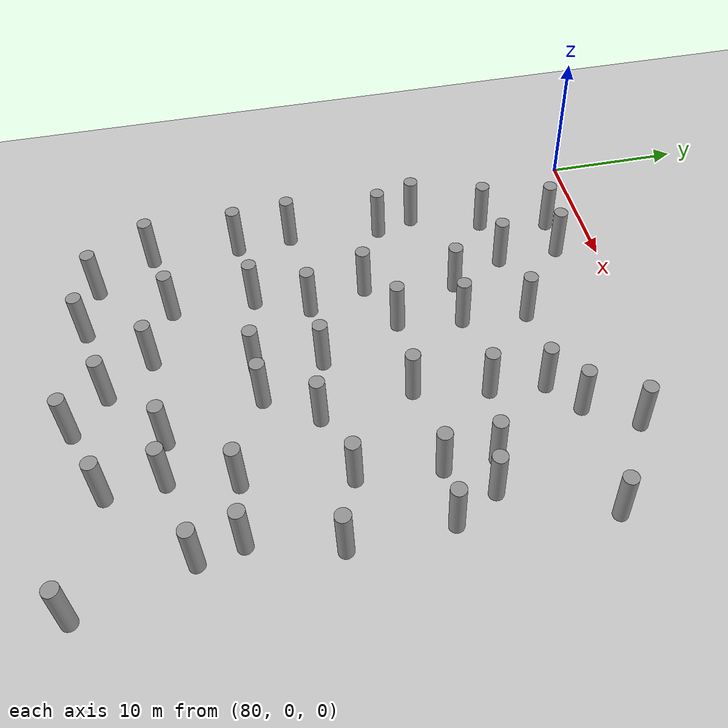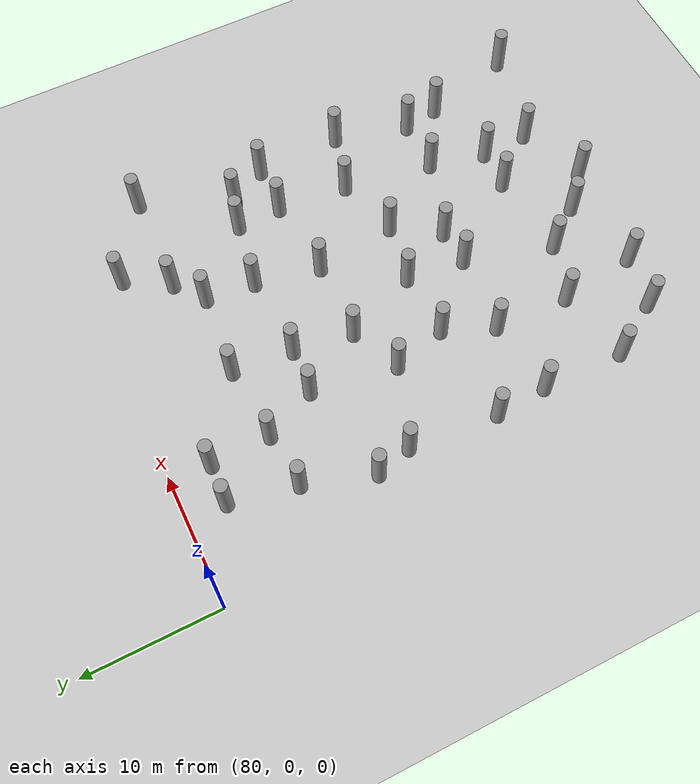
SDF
<sdf version="1.5">
 <world name="circle">
  <model name="ground">
   <static>1</static>
   <link name="link">
    <collision name="collision">
     <geometry><plane><normal>0 0 1</normal><size>100 100</size></plane></geometry>
     <surface><friction><ode><mu>100</mu><mu2>50</mu2></ode></friction></surface>
    </collision>
    <visual name="visual">
     <cast_shadows>0</cast_shadows>
     <geometry><plane><normal>0 0 1</normal><size>100 100</size></plane></geometry>
     <material>
      <script><uri>file://media/materials/scripts/gazebo.material</uri><name>Gazebo/Grey</name></script>
     </material>
    </visual>
    <velocity_decay><linear>0</linear><angular>0</angular></velocity_decay>
   </link>
  </model>
  <model name="unit_cylinder_225">
   <pose>86.4956951205 -36.5003916721 2 3e-06 4e-06 -0</pose>
   <static>1</static>
   <self_collide>1</self_collide>
   <link name="link">
    <inertial>
     <mass>1</mass>
     <inertia><ixx>0.145833</ixx><ixy>0</ixy><ixz>0</ixz><iyy>0.145833</iyy><iyz>0</iyz><izz>0.125</izz></inertia>
    </inertial>
    <collision name="collision">
     <geometry><cylinder><radius>0.5</radius><length>4</length></cylinder></geometry>
    </collision>
    <visual name="visual">
     <geometry><cylinder><radius>0.5</radius><length>4</length></cylinder></geometry>
     <material>
      <script><name>Gazebo/Grey</name><uri>file://media/materials/scripts/gazebo.material</uri></script>
     </material>
    </visual>
    <collision name="cyl_collision">
     <geometry><cylinder><radius>0.5</radius><length>4</length></cylinder></geometry>
    </collision>
    <sensor name="my_contact" type="contact">
     <contact><collision>cyl_collision</collision></contact>
     <update_rate>5</update_rate>
    </sensor>
   </link>
  </model>
  <model name="unit_cylinder_226">
   <pose>84.0074222002 -32.5677359966 2 3e-06 4e-06 -0</pose>
   <static>1</static>
   <self_collide>1</self_collide>
   <link name="link">
    <inertial>
     <mass>1</mass>
     <inertia><ixx>0.145833</ixx><ixy>0</ixy><ixz>0</ixz><iyy>0.145833</iyy><iyz>0</iyz><izz>0.125</izz></inertia>
    </inertial>
    <collision name="collision">
     <geometry><cylinder><radius>0.5</radius><length>4</length></cylinder></geometry>
    </collision>
    <visual name="visual">
     <geometry><cylinder><radius>0.5</radius><length>4</length></cylinder></geometry>
     <material>
      <script><name>Gazebo/Grey</name><uri>file://media/materials/scripts/gazebo.material</uri></script>
     </material>
    </visual>
    <collision name="cyl_collision">
     <geometry><cylinder><radius>0.5</radius><length>4</length></cylinder></geometry>
    </collision>
    <sensor name="my_contact" type="contact">
     <contact><collision>cyl_collision</collision></contact>
     <update_rate>5</update_rate>
    </sensor>
   </link>
  </model>
  <model name="unit_cylinder_227">
   <pose>84.0986050328 -26.2954249527 2 3e-06 4e-06 -0</pose>
   <static>1</static>
   <self_collide>1</self_collide>
   <link name="link">
    <inertial>
     <mass>1</mass>
     <inertia><ixx>0.145833</ixx><ixy>0</ixy><ixz>0</ixz><iyy>0.145833</iyy><iyz>0</iyz><izz>0.125</izz></inertia>
    </inertial>
    <collision name="collision">
     <geometry><cylinder><radius>0.5</radius><length>4</length></cylinder></geometry>
    </collision>
    <visual name="visual">
     <geometry><cylinder><radius>0.5</radius><length>4</length></cylinder></geometry>
     <material>
      <script><name>Gazebo/Grey</name><uri>file://media/materials/scripts/gazebo.material</uri></script>
     </material>
    </visual>
    <collision name="cyl_collision">
     <geometry><cylinder><radius>0.5</radius><length>4</length></cylinder></geometry>
    </collision>
    <sensor name="my_contact" type="contact">
     <contact><collision>cyl_collision</collision></contact>
     <update_rate>5</update_rate>
    </sensor>
   </link>
  </model>
  <model name="unit_cylinder_228">
   <pose>83.7937717257 -22.3384282768 2 3e-06 4e-06 -0</pose>
   <static>1</static>
   <self_collide>1</self_collide>
   <link name="link">
    <inertial>
     <mass>1</mass>
     <inertia><ixx>0.145833</ixx><ixy>0</ixy><ixz>0</ixz><iyy>0.145833</iyy><iyz>0</iyz><izz>0.125</izz></inertia>
    </inertial>
    <collision name="collision">
     <geometry><cylinder><radius>0.5</radius><length>4</length></cylinder></geometry>
    </collision>
    <visual name="visual">
     <geometry><cylinder><radius>0.5</radius><length>4</length></cylinder></geometry>
     <material>
      <script><name>Gazebo/Grey</name><uri>file://media/materials/scripts/gazebo.material</uri></script>
     </material>
    </visual>
    <collision name="cyl_collision">
     <geometry><cylinder><radius>0.5</radius><length>4</length></cylinder></geometry>
    </collision>
    <sensor name="my_contact" type="contact">
     <contact><collision>cyl_collision</collision></contact>
     <update_rate>5</update_rate>
    </sensor>
   </link>
  </model>
  <model name="unit_cylinder_229">
   <pose>84.342156499 -15.6404405213 2 3e-06 4e-06 -0</pose>
   <static>1</static>
   <self_collide>1</self_collide>
   <link name="link">
    <inertial>
     <mass>1</mass>
     <inertia><ixx>0.145833</ixx><ixy>0</ixy><ixz>0</ixz><iyy>0.145833</iyy><iyz>0</iyz><izz>0.125</izz></inertia>
    </inertial>
    <collision name="collision">
     <geometry><cylinder><radius>0.5</radius><length>4</length></cylinder></geometry>
    </collision>
    <visual name="visual">
     <geometry><cylinder><radius>0.5</radius><length>4</length></cylinder></geometry>
     <material>
      <script><name>Gazebo/Grey</name><uri>file://media/materials/scripts/gazebo.material</uri></script>
     </material>
    </visual>
    <collision name="cyl_collision">
     <geometry><cylinder><radius>0.5</radius><length>4</length></cylinder></geometry>
    </collision>
    <sensor name="my_contact" type="contact">
     <contact><collision>cyl_collision</collision></contact>
     <update_rate>5</update_rate>
    </sensor>
   </link>
  </model>
  <model name="unit_cylinder_230">
   <pose>83.5856992565 -12.9443503097 2 3e-06 4e-06 -0</pose>
   <static>1</static>
   <self_collide>1</self_collide>
   <link name="link">
    <inertial>
     <mass>1</mass>
     <inertia><ixx>0.145833</ixx><ixy>0</ixy><ixz>0</ixz><iyy>0.145833</iyy><iyz>0</iyz><izz>0.125</izz></inertia>
    </inertial>
    <collision name="collision">
     <geometry><cylinder><radius>0.5</radius><length>4</length></cylinder></geometry>
    </collision>
    <visual name="visual">
     <geometry><cylinder><radius>0.5</radius><length>4</length></cylinder></geometry>
     <material>
      <script><name>Gazebo/Grey</name><uri>file://media/materials/scripts/gazebo.material</uri></script>
     </material>
    </visual>
    <collision name="cyl_collision">
     <geometry><cylinder><radius>0.5</radius><length>4</length></cylinder></geometry>
    </collision>
    <sensor name="my_contact" type="contact">
     <contact><collision>cyl_collision</collision></contact>
     <update_rate>5</update_rate>
    </sensor>
   </link>
  </model>
  <model name="unit_cylinder_231">
   <pose>85.254539633 -7.80928791896 2 3e-06 4e-06 -0</pose>
   <static>1</static>
   <self_collide>1</self_collide>
   <link name="link">
    <inertial>
     <mass>1</mass>
     <inertia><ixx>0.145833</ixx><ixy>0</ixy><ixz>0</ixz><iyy>0.145833</iyy><iyz>0</iyz><izz>0.125</izz></inertia>
    </inertial>
    <collision name="collision">
     <geometry><cylinder><radius>0.5</radius><length>4</length></cylinder></geometry>
    </collision>
    <visual name="visual">
     <geometry><cylinder><radius>0.5</radius><length>4</length></cylinder></geometry>
     <material>
      <script><name>Gazebo/Grey</name><uri>file://media/materials/scripts/gazebo.material</uri></script>
     </material>
    </visual>
    <collision name="cyl_collision">
     <geometry><cylinder><radius>0.5</radius><length>4</length></cylinder></geometry>
    </collision>
    <sensor name="my_contact" type="contact">
     <contact><collision>cyl_collision</collision></contact>
     <update_rate>5</update_rate>
    </sensor>
   </link>
  </model>
  <model name="unit_cylinder_232">
   <pose>86.2855381436 -2.85096647209 2 3e-06 4e-06 -0</pose>
   <static>1</static>
   <self_collide>1</self_collide>
   <link name="link">
    <inertial>
     <mass>1</mass>
     <inertia><ixx>0.145833</ixx><ixy>0</ixy><ixz>0</ixz><iyy>0.145833</iyy><iyz>0</iyz><izz>0.125</izz></inertia>
    </inertial>
    <collision name="collision">
     <geometry><cylinder><radius>0.5</radius><length>4</length></cylinder></geometry>
    </collision>
    <visual name="visual">
     <geometry><cylinder><radius>0.5</radius><length>4</length></cylinder></geometry>
     <material>
      <script><name>Gazebo/Grey</name><uri>file://media/materials/scripts/gazebo.material</uri></script>
     </material>
    </visual>
    <collision name="cyl_collision">
     <geometry><cylinder><radius>0.5</radius><length>4</length></cylinder></geometry>
    </collision>
    <sensor name="my_contact" type="contact">
     <contact><collision>cyl_collision</collision></contact>
     <update_rate>5</update_rate>
    </sensor>
   </link>
  </model>
  <model name="unit_cylinder_240">
   <pose>90.4895688261 -37.3180648188 2 3e-06 4e-06 -0</pose>
   <static>1</static>
   <self_collide>1</self_collide>
   <link name="link">
    <inertial>
     <mass>1</mass>
     <inertia><ixx>0.145833</ixx><ixy>0</ixy><ixz>0</ixz><iyy>0.145833</iyy><iyz>0</iyz><izz>0.125</izz></inertia>
    </inertial>
    <collision name="collision">
     <geometry><cylinder><radius>0.5</radius><length>4</length></cylinder></geometry>
    </collision>
    <visual name="visual">
     <geometry><cylinder><radius>0.5</radius><length>4</length></cylinder></geometry>
     <material>
      <script><name>Gazebo/Grey</name><uri>file://media/materials/scripts/gazebo.material</uri></script>
     </material>
    </visual>
    <collision name="cyl_collision">
     <geometry><cylinder><radius>0.5</radius><length>4</length></cylinder></geometry>
    </collision>
    <sensor name="my_contact" type="contact">
     <contact><collision>cyl_collision</collision></contact>
     <update_rate>5</update_rate>
    </sensor>
   </link>
  </model>
  <model name="unit_cylinder_241">
   <pose>89.6616665454 -31.40047322 2 3e-06 4e-06 -0</pose>
   <static>1</static>
   <self_collide>1</self_collide>
   <link name="link">
    <inertial>
     <mass>1</mass>
     <inertia><ixx>0.145833</ixx><ixy>0</ixy><ixz>0</ixz><iyy>0.145833</iyy><iyz>0</iyz><izz>0.125</izz></inertia>
    </inertial>
    <collision name="collision">
     <geometry><cylinder><radius>0.5</radius><length>4</length></cylinder></geometry>
    </collision>
    <visual name="visual">
     <geometry><cylinder><radius>0.5</radius><length>4</length></cylinder></geometry>
     <material>
      <script><name>Gazebo/Grey</name><uri>file://media/materials/scripts/gazebo.material</uri></script>
     </material>
    </visual>
    <collision name="cyl_collision">
     <geometry><cylinder><radius>0.5</radius><length>4</length></cylinder></geometry>
    </collision>
    <sensor name="my_contact" type="contact">
     <contact><collision>cyl_collision</collision></contact>
     <update_rate>5</update_rate>
    </sensor>
   </link>
  </model>
  <model name="unit_cylinder_242">
   <pose>89.8153857796 -25.6610346201 2 3e-06 4e-06 -0</pose>
   <static>1</static>
   <self_collide>1</self_collide>
   <link name="link">
    <inertial>
     <mass>1</mass>
     <inertia><ixx>0.145833</ixx><ixy>0</ixy><ixz>0</ixz><iyy>0.145833</iyy><iyz>0</iyz><izz>0.125</izz></inertia>
    </inertial>
    <collision name="collision">
     <geometry><cylinder><radius>0.5</radius><length>4</length></cylinder></geometry>
    </collision>
    <visual name="visual">
     <geometry><cylinder><radius>0.5</radius><length>4</length></cylinder></geometry>
     <material>
      <script><name>Gazebo/Grey</name><uri>file://media/materials/scripts/gazebo.material</uri></script>
     </material>
    </visual>
    <collision name="cyl_collision">
     <geometry><cylinder><radius>0.5</radius><length>4</length></cylinder></geometry>
    </collision>
    <sensor name="my_contact" type="contact">
     <contact><collision>cyl_collision</collision></contact>
     <update_rate>5</update_rate>
    </sensor>
   </link>
  </model>
  <model name="unit_cylinder_243">
   <pose>91.4031925464 -21.8771297094 2 3e-06 4e-06 -0</pose>
   <static>1</static>
   <self_collide>1</self_collide>
   <link name="link">
    <inertial>
     <mass>1</mass>
     <inertia><ixx>0.145833</ixx><ixy>0</ixy><ixz>0</ixz><iyy>0.145833</iyy><iyz>0</iyz><izz>0.125</izz></inertia>
    </inertial>
    <collision name="collision">
     <geometry><cylinder><radius>0.5</radius><length>4</length></cylinder></geometry>
    </collision>
    <visual name="visual">
     <geometry><cylinder><radius>0.5</radius><length>4</length></cylinder></geometry>
     <material>
      <script><name>Gazebo/Grey</name><uri>file://media/materials/scripts/gazebo.material</uri></script>
     </material>
    </visual>
    <collision name="cyl_collision">
     <geometry><cylinder><radius>0.5</radius><length>4</length></cylinder></geometry>
    </collision>
    <sensor name="my_contact" type="contact">
     <contact><collision>cyl_collision</collision></contact>
     <update_rate>5</update_rate>
    </sensor>
   </link>
  </model>
  <model name="unit_cylinder_244">
   <pose>90.2374908362 -17.7970545369 2 3e-06 4e-06 -0</pose>
   <static>1</static>
   <self_collide>1</self_collide>
   <link name="link">
    <inertial>
     <mass>1</mass>
     <inertia><ixx>0.145833</ixx><ixy>0</ixy><ixz>0</ixz><iyy>0.145833</iyy><iyz>0</iyz><izz>0.125</izz></inertia>
    </inertial>
    <collision name="collision">
     <geometry><cylinder><radius>0.5</radius><length>4</length></cylinder></geometry>
    </collision>
    <visual name="visual">
     <geometry><cylinder><radius>0.5</radius><length>4</length></cylinder></geometry>
     <material>
      <script><name>Gazebo/Grey</name><uri>file://media/materials/scripts/gazebo.material</uri></script>
     </material>
    </visual>
    <collision name="cyl_collision">
     <geometry><cylinder><radius>0.5</radius><length>4</length></cylinder></geometry>
    </collision>
    <sensor name="my_contact" type="contact">
     <contact><collision>cyl_collision</collision></contact>
     <update_rate>5</update_rate>
    </sensor>
   </link>
  </model>
  <model name="unit_cylinder_245">
   <pose>91.2303419271 -11.3506104961 2 3e-06 4e-06 -0</pose>
   <static>1</static>
   <self_collide>1</self_collide>
   <link name="link">
    <inertial>
     <mass>1</mass>
     <inertia><ixx>0.145833</ixx><ixy>0</ixy><ixz>0</ixz><iyy>0.145833</iyy><iyz>0</iyz><izz>0.125</izz></inertia>
    </inertial>
    <collision name="collision">
     <geometry><cylinder><radius>0.5</radius><length>4</length></cylinder></geometry>
    </collision>
    <visual name="visual">
     <geometry><cylinder><radius>0.5</radius><length>4</length></cylinder></geometry>
     <material>
      <script><name>Gazebo/Grey</name><uri>file://media/materials/scripts/gazebo.material</uri></script>
     </material>
    </visual>
    <collision name="cyl_collision">
     <geometry><cylinder><radius>0.5</radius><length>4</length></cylinder></geometry>
    </collision>
    <sensor name="my_contact" type="contact">
     <contact><collision>cyl_collision</collision></contact>
     <update_rate>5</update_rate>
    </sensor>
   </link>
  </model>
  <model name="unit_cylinder_246">
   <pose>89.4258648698 -7.452878328 2 3e-06 4e-06 -0</pose>
   <static>1</static>
   <self_collide>1</self_collide>
   <link name="link">
    <inertial>
     <mass>1</mass>
     <inertia><ixx>0.145833</ixx><ixy>0</ixy><ixz>0</ixz><iyy>0.145833</iyy><iyz>0</iyz><izz>0.125</izz></inertia>
    </inertial>
    <collision name="collision">
     <geometry><cylinder><radius>0.5</radius><length>4</length></cylinder></geometry>
    </collision>
    <visual name="visual">
     <geometry><cylinder><radius>0.5</radius><length>4</length></cylinder></geometry>
     <material>
      <script><name>Gazebo/Grey</name><uri>file://media/materials/scripts/gazebo.material</uri></script>
     </material>
    </visual>
    <collision name="cyl_collision">
     <geometry><cylinder><radius>0.5</radius><length>4</length></cylinder></geometry>
    </collision>
    <sensor name="my_contact" type="contact">
     <contact><collision>cyl_collision</collision></contact>
     <update_rate>5</update_rate>
    </sensor>
   </link>
  </model>
  <model name="unit_cylinder_247">
   <pose>89.2848181351 -2.99825741992 2 3e-06 4e-06 -0</pose>
   <static>1</static>
   <self_collide>1</self_collide>
   <link name="link">
    <inertial>
     <mass>1</mass>
     <inertia><ixx>0.145833</ixx><ixy>0</ixy><ixz>0</ixz><iyy>0.145833</iyy><iyz>0</iyz><izz>0.125</izz></inertia>
    </inertial>
    <collision name="collision">
     <geometry><cylinder><radius>0.5</radius><length>4</length></cylinder></geometry>
    </collision>
    <visual name="visual">
     <geometry><cylinder><radius>0.5</radius><length>4</length></cylinder></geometry>
     <material>
      <script><name>Gazebo/Grey</name><uri>file://media/materials/scripts/gazebo.material</uri></script>
     </material>
    </visual>
    <collision name="cyl_collision">
     <geometry><cylinder><radius>0.5</radius><length>4</length></cylinder></geometry>
    </collision>
    <sensor name="my_contact" type="contact">
     <contact><collision>cyl_collision</collision></contact>
     <update_rate>5</update_rate>
    </sensor>
   </link>
  </model>
  <model name="unit_cylinder_255">
   <pose>96.3292859578 -35.8918948023 2 3e-06 4e-06 -0</pose>
   <static>1</static>
   <self_collide>1</self_collide>
   <link name="link">
    <inertial>
     <mass>1</mass>
     <inertia><ixx>0.145833</ixx><ixy>0</ixy><ixz>0</ixz><iyy>0.145833</iyy><iyz>0</iyz><izz>0.125</izz></inertia>
    </inertial>
    <collision name="collision">
     <geometry><cylinder><radius>0.5</radius><length>4</length></cylinder></geometry>
    </collision>
    <visual name="visual">
     <geometry><cylinder><radius>0.5</radius><length>4</length></cylinder></geometry>
     <material>
      <script><name>Gazebo/Grey</name><uri>file://media/materials/scripts/gazebo.material</uri></script>
     </material>
    </visual>
    <collision name="cyl_collision">
     <geometry><cylinder><radius>0.5</radius><length>4</length></cylinder></geometry>
    </collision>
    <sensor name="my_contact" type="contact">
     <contact><collision>cyl_collision</collision></contact>
     <update_rate>5</update_rate>
    </sensor>
   </link>
  </model>
  <model name="unit_cylinder_256">
   <pose>93.9549346884 -32.9201045315 2 3e-06 4e-06 -0</pose>
   <static>1</static>
   <self_collide>1</self_collide>
   <link name="link">
    <inertial>
     <mass>1</mass>
     <inertia><ixx>0.145833</ixx><ixy>0</ixy><ixz>0</ixz><iyy>0.145833</iyy><iyz>0</iyz><izz>0.125</izz></inertia>
    </inertial>
    <collision name="collision">
     <geometry><cylinder><radius>0.5</radius><length>4</length></cylinder></geometry>
    </collision>
    <visual name="visual">
     <geometry><cylinder><radius>0.5</radius><length>4</length></cylinder></geometry>
     <material>
      <script><name>Gazebo/Grey</name><uri>file://media/materials/scripts/gazebo.material</uri></script>
     </material>
    </visual>
    <collision name="cyl_collision">
     <geometry><cylinder><radius>0.5</radius><length>4</length></cylinder></geometry>
    </collision>
    <sensor name="my_contact" type="contact">
     <contact><collision>cyl_collision</collision></contact>
     <update_rate>5</update_rate>
    </sensor>
   </link>
  </model>
  <model name="unit_cylinder_257">
   <pose>95.8673355725 -26.1975886924 2 3e-06 4e-06 -0</pose>
   <static>1</static>
   <self_collide>1</self_collide>
   <link name="link">
    <inertial>
     <mass>1</mass>
     <inertia><ixx>0.145833</ixx><ixy>0</ixy><ixz>0</ixz><iyy>0.145833</iyy><iyz>0</iyz><izz>0.125</izz></inertia>
    </inertial>
    <collision name="collision">
     <geometry><cylinder><radius>0.5</radius><length>4</length></cylinder></geometry>
    </collision>
    <visual name="visual">
     <geometry><cylinder><radius>0.5</radius><length>4</length></cylinder></geometry>
     <material>
      <script><name>Gazebo/Grey</name><uri>file://media/materials/scripts/gazebo.material</uri></script>
     </material>
    </visual>
    <collision name="cyl_collision">
     <geometry><cylinder><radius>0.5</radius><length>4</length></cylinder></geometry>
    </collision>
    <sensor name="my_contact" type="contact">
     <contact><collision>cyl_collision</collision></contact>
     <update_rate>5</update_rate>
    </sensor>
   </link>
  </model>
  <model name="unit_cylinder_258">
   <pose>96.3628205383 -21.7115259265 2 3e-06 4e-06 -0</pose>
   <static>1</static>
   <self_collide>1</self_collide>
   <link name="link">
    <inertial>
     <mass>1</mass>
     <inertia><ixx>0.145833</ixx><ixy>0</ixy><ixz>0</ixz><iyy>0.145833</iyy><iyz>0</iyz><izz>0.125</izz></inertia>
    </inertial>
    <collision name="collision">
     <geometry><cylinder><radius>0.5</radius><length>4</length></cylinder></geometry>
    </collision>
    <visual name="visual">
     <geometry><cylinder><radius>0.5</radius><length>4</length></cylinder></geometry>
     <material>
      <script><name>Gazebo/Grey</name><uri>file://media/materials/scripts/gazebo.material</uri></script>
     </material>
    </visual>
    <collision name="cyl_collision">
     <geometry><cylinder><radius>0.5</radius><length>4</length></cylinder></geometry>
    </collision>
    <sensor name="my_contact" type="contact">
     <contact><collision>cyl_collision</collision></contact>
     <update_rate>5</update_rate>
    </sensor>
   </link>
  </model>
  <model name="unit_cylinder_259">
   <pose>94.0256576278 -16.1306320342 2 3e-06 4e-06 -0</pose>
   <static>1</static>
   <self_collide>1</self_collide>
   <link name="link">
    <inertial>
     <mass>1</mass>
     <inertia><ixx>0.145833</ixx><ixy>0</ixy><ixz>0</ixz><iyy>0.145833</iyy><iyz>0</iyz><izz>0.125</izz></inertia>
    </inertial>
    <collision name="collision">
     <geometry><cylinder><radius>0.5</radius><length>4</length></cylinder></geometry>
    </collision>
    <visual name="visual">
     <geometry><cylinder><radius>0.5</radius><length>4</length></cylinder></geometry>
     <material>
      <script><name>Gazebo/Grey</name><uri>file://media/materials/scripts/gazebo.material</uri></script>
     </material>
    </visual>
    <collision name="cyl_collision">
     <geometry><cylinder><radius>0.5</radius><length>4</length></cylinder></geometry>
    </collision>
    <sensor name="my_contact" type="contact">
     <contact><collision>cyl_collision</collision></contact>
     <update_rate>5</update_rate>
    </sensor>
   </link>
  </model>
  <model name="unit_cylinder_260">
   <pose>94.6757254084 -11.6272411605 2 3e-06 4e-06 -0</pose>
   <static>1</static>
   <self_collide>1</self_collide>
   <link name="link">
    <inertial>
     <mass>1</mass>
     <inertia><ixx>0.145833</ixx><ixy>0</ixy><ixz>0</ixz><iyy>0.145833</iyy><iyz>0</iyz><izz>0.125</izz></inertia>
    </inertial>
    <collision name="collision">
     <geometry><cylinder><radius>0.5</radius><length>4</length></cylinder></geometry>
    </collision>
    <visual name="visual">
     <geometry><cylinder><radius>0.5</radius><length>4</length></cylinder></geometry>
     <material>
      <script><name>Gazebo/Grey</name><uri>file://media/materials/scripts/gazebo.material</uri></script>
     </material>
    </visual>
    <collision name="cyl_collision">
     <geometry><cylinder><radius>0.5</radius><length>4</length></cylinder></geometry>
    </collision>
    <sensor name="my_contact" type="contact">
     <contact><collision>cyl_collision</collision></contact>
     <update_rate>5</update_rate>
    </sensor>
   </link>
  </model>
  <model name="unit_cylinder_261">
   <pose>95.1032434197 -7.06173234439 2 3e-06 4e-06 -0</pose>
   <static>1</static>
   <self_collide>1</self_collide>
   <link name="link">
    <inertial>
     <mass>1</mass>
     <inertia><ixx>0.145833</ixx><ixy>0</ixy><ixz>0</ixz><iyy>0.145833</iyy><iyz>0</iyz><izz>0.125</izz></inertia>
    </inertial>
    <collision name="collision">
     <geometry><cylinder><radius>0.5</radius><length>4</length></cylinder></geometry>
    </collision>
    <visual name="visual">
     <geometry><cylinder><radius>0.5</radius><length>4</length></cylinder></geometry>
     <material>
      <script><name>Gazebo/Grey</name><uri>file://media/materials/scripts/gazebo.material</uri></script>
     </material>
    </visual>
    <collision name="cyl_collision">
     <geometry><cylinder><radius>0.5</radius><length>4</length></cylinder></geometry>
    </collision>
    <sensor name="my_contact" type="contact">
     <contact><collision>cyl_collision</collision></contact>
     <update_rate>5</update_rate>
    </sensor>
   </link>
  </model>
  <model name="unit_cylinder_270">
   <pose>98.8882629057 -38.0946358914 2 3e-06 4e-06 -0</pose>
   <static>1</static>
   <self_collide>1</self_collide>
   <link name="link">
    <inertial>
     <mass>1</mass>
     <inertia><ixx>0.145833</ixx><ixy>0</ixy><ixz>0</ixz><iyy>0.145833</iyy><iyz>0</iyz><izz>0.125</izz></inertia>
    </inertial>
    <collision name="collision">
     <geometry><cylinder><radius>0.5</radius><length>4</length></cylinder></geometry>
    </collision>
    <visual name="visual">
     <geometry><cylinder><radius>0.5</radius><length>4</length></cylinder></geometry>
     <material>
      <script><name>Gazebo/Grey</name><uri>file://media/materials/scripts/gazebo.material</uri></script>
     </material>
    </visual>
    <collision name="cyl_collision">
     <geometry><cylinder><radius>0.5</radius><length>4</length></cylinder></geometry>
    </collision>
    <sensor name="my_contact" type="contact">
     <contact><collision>cyl_collision</collision></contact>
     <update_rate>5</update_rate>
    </sensor>
   </link>
  </model>
  <model name="unit_cylinder_271">
   <pose>100.68308147 -32.2951383682 2 3e-06 4e-06 -0</pose>
   <static>1</static>
   <self_collide>1</self_collide>
   <link name="link">
    <inertial>
     <mass>1</mass>
     <inertia><ixx>0.145833</ixx><ixy>0</ixy><ixz>0</ixz><iyy>0.145833</iyy><iyz>0</iyz><izz>0.125</izz></inertia>
    </inertial>
    <collision name="collision">
     <geometry><cylinder><radius>0.5</radius><length>4</length></cylinder></geometry>
    </collision>
    <visual name="visual">
     <geometry><cylinder><radius>0.5</radius><length>4</length></cylinder></geometry>
     <material>
      <script><name>Gazebo/Grey</name><uri>file://media/materials/scripts/gazebo.material</uri></script>
     </material>
    </visual>
    <collision name="cyl_collision">
     <geometry><cylinder><radius>0.5</radius><length>4</length></cylinder></geometry>
    </collision>
    <sensor name="my_contact" type="contact">
     <contact><collision>cyl_collision</collision></contact>
     <update_rate>5</update_rate>
    </sensor>
   </link>
  </model>
  <model name="unit_cylinder_272">
   <pose>98.6928194468 -26.0212404986 2 3e-06 4e-06 -0</pose>
   <static>1</static>
   <self_collide>1</self_collide>
   <link name="link">
    <inertial>
     <mass>1</mass>
     <inertia><ixx>0.145833</ixx><ixy>0</ixy><ixz>0</ixz><iyy>0.145833</iyy><iyz>0</iyz><izz>0.125</izz></inertia>
    </inertial>
    <collision name="collision">
     <geometry><cylinder><radius>0.5</radius><length>4</length></cylinder></geometry>
    </collision>
    <visual name="visual">
     <geometry><cylinder><radius>0.5</radius><length>4</length></cylinder></geometry>
     <material>
      <script><name>Gazebo/Grey</name><uri>file://media/materials/scripts/gazebo.material</uri></script>
     </material>
    </visual>
    <collision name="cyl_collision">
     <geometry><cylinder><radius>0.5</radius><length>4</length></cylinder></geometry>
    </collision>
    <sensor name="my_contact" type="contact">
     <contact><collision>cyl_collision</collision></contact>
     <update_rate>5</update_rate>
    </sensor>
   </link>
  </model>
  <model name="unit_cylinder_273">
   <pose>100.9341683 -22.5667265654 2 3e-06 4e-06 -0</pose>
   <static>1</static>
   <self_collide>1</self_collide>
   <link name="link">
    <inertial>
     <mass>1</mass>
     <inertia><ixx>0.145833</ixx><ixy>0</ixy><ixz>0</ixz><iyy>0.145833</iyy><iyz>0</iyz><izz>0.125</izz></inertia>
    </inertial>
    <collision name="collision">
     <geometry><cylinder><radius>0.5</radius><length>4</length></cylinder></geometry>
    </collision>
    <visual name="visual">
     <geometry><cylinder><radius>0.5</radius><length>4</length></cylinder></geometry>
     <material>
      <script><name>Gazebo/Grey</name><uri>file://media/materials/scripts/gazebo.material</uri></script>
     </material>
    </visual>
    <collision name="cyl_collision">
     <geometry><cylinder><radius>0.5</radius><length>4</length></cylinder></geometry>
    </collision>
    <sensor name="my_contact" type="contact">
     <contact><collision>cyl_collision</collision></contact>
     <update_rate>5</update_rate>
    </sensor>
   </link>
  </model>
  <model name="unit_cylinder_274">
   <pose>100.077960459 -16.351322359 2 3e-06 4e-06 -0</pose>
   <static>1</static>
   <self_collide>1</self_collide>
   <link name="link">
    <inertial>
     <mass>1</mass>
     <inertia><ixx>0.145833</ixx><ixy>0</ixy><ixz>0</ixz><iyy>0.145833</iyy><iyz>0</iyz><izz>0.125</izz></inertia>
    </inertial>
    <collision name="collision">
     <geometry><cylinder><radius>0.5</radius><length>4</length></cylinder></geometry>
    </collision>
    <visual name="visual">
     <geometry><cylinder><radius>0.5</radius><length>4</length></cylinder></geometry>
     <material>
      <script><name>Gazebo/Grey</name><uri>file://media/materials/scripts/gazebo.material</uri></script>
     </material>
    </visual>
    <collision name="cyl_collision">
     <geometry><cylinder><radius>0.5</radius><length>4</length></cylinder></geometry>
    </collision>
    <sensor name="my_contact" type="contact">
     <contact><collision>cyl_collision</collision></contact>
     <update_rate>5</update_rate>
    </sensor>
   </link>
  </model>
  <model name="unit_cylinder_275">
   <pose>101.064404934 -11.4112776403 2 3e-06 4e-06 -0</pose>
   <static>1</static>
   <self_collide>1</self_collide>
   <link name="link">
    <inertial>
     <mass>1</mass>
     <inertia><ixx>0.145833</ixx><ixy>0</ixy><ixz>0</ixz><iyy>0.145833</iyy><iyz>0</iyz><izz>0.125</izz></inertia>
    </inertial>
    <collision name="collision">
     <geometry><cylinder><radius>0.5</radius><length>4</length></cylinder></geometry>
    </collision>
    <visual name="visual">
     <geometry><cylinder><radius>0.5</radius><length>4</length></cylinder></geometry>
     <material>
      <script><name>Gazebo/Grey</name><uri>file://media/materials/scripts/gazebo.material</uri></script>
     </material>
    </visual>
    <collision name="cyl_collision">
     <geometry><cylinder><radius>0.5</radius><length>4</length></cylinder></geometry>
    </collision>
    <sensor name="my_contact" type="contact">
     <contact><collision>cyl_collision</collision></contact>
     <update_rate>5</update_rate>
    </sensor>
   </link>
  </model>
  <model name="unit_cylinder_276">
   <pose>101.422150165 -7.67985493415 2 3e-06 4e-06 -0</pose>
   <static>1</static>
   <self_collide>1</self_collide>
   <link name="link">
    <inertial>
     <mass>1</mass>
     <inertia><ixx>0.145833</ixx><ixy>0</ixy><ixz>0</ixz><iyy>0.145833</iyy><iyz>0</iyz><izz>0.125</izz></inertia>
    </inertial>
    <collision name="collision">
     <geometry><cylinder><radius>0.5</radius><length>4</length></cylinder></geometry>
    </collision>
    <visual name="visual">
     <geometry><cylinder><radius>0.5</radius><length>4</length></cylinder></geometry>
     <material>
      <script><name>Gazebo/Grey</name><uri>file://media/materials/scripts/gazebo.material</uri></script>
     </material>
    </visual>
    <collision name="cyl_collision">
     <geometry><cylinder><radius>0.5</radius><length>4</length></cylinder></geometry>
    </collision>
    <sensor name="my_contact" type="contact">
     <contact><collision>cyl_collision</collision></contact>
     <update_rate>5</update_rate>
    </sensor>
   </link>
  </model>
  <model name="unit_cylinder_285">
   <pose>103.95393902 -36.1018142883 2 3e-06 4e-06 -0</pose>
   <static>1</static>
   <self_collide>1</self_collide>
   <link name="link">
    <inertial>
     <mass>1</mass>
     <inertia><ixx>0.145833</ixx><ixy>0</ixy><ixz>0</ixz><iyy>0.145833</iyy><iyz>0</iyz><izz>0.125</izz></inertia>
    </inertial>
    <collision name="collision">
     <geometry><cylinder><radius>0.5</radius><length>4</length></cylinder></geometry>
    </collision>
    <visual name="visual">
     <geometry><cylinder><radius>0.5</radius><length>4</length></cylinder></geometry>
     <material>
      <script><name>Gazebo/Grey</name><uri>file://media/materials/scripts/gazebo.material</uri></script>
     </material>
    </visual>
    <collision name="cyl_collision">
     <geometry><cylinder><radius>0.5</radius><length>4</length></cylinder></geometry>
    </collision>
    <sensor name="my_contact" type="contact">
     <contact><collision>cyl_collision</collision></contact>
     <update_rate>5</update_rate>
    </sensor>
   </link>
  </model>
  <model name="unit_cylinder_286">
   <pose>103.749271613 -32.4127785786 2 3e-06 4e-06 -0</pose>
   <static>1</static>
   <self_collide>1</self_collide>
   <link name="link">
    <inertial>
     <mass>1</mass>
     <inertia><ixx>0.145833</ixx><ixy>0</ixy><ixz>0</ixz><iyy>0.145833</iyy><iyz>0</iyz><izz>0.125</izz></inertia>
    </inertial>
    <collision name="collision">
     <geometry><cylinder><radius>0.5</radius><length>4</length></cylinder></geometry>
    </collision>
    <visual name="visual">
     <geometry><cylinder><radius>0.5</radius><length>4</length></cylinder></geometry>
     <material>
      <script><name>Gazebo/Grey</name><uri>file://media/materials/scripts/gazebo.material</uri></script>
     </material>
    </visual>
    <collision name="cyl_collision">
     <geometry><cylinder><radius>0.5</radius><length>4</length></cylinder></geometry>
    </collision>
    <sensor name="my_contact" type="contact">
     <contact><collision>cyl_collision</collision></contact>
     <update_rate>5</update_rate>
    </sensor>
   </link>
  </model>
  <model name="unit_cylinder_287">
   <pose>104.739679178 -28.0711441827 2 3e-06 4e-06 -0</pose>
   <static>1</static>
   <self_collide>1</self_collide>
   <link name="link">
    <inertial>
     <mass>1</mass>
     <inertia><ixx>0.145833</ixx><ixy>0</ixy><ixz>0</ixz><iyy>0.145833</iyy><iyz>0</iyz><izz>0.125</izz></inertia>
    </inertial>
    <collision name="collision">
     <geometry><cylinder><radius>0.5</radius><length>4</length></cylinder></geometry>
    </collision>
    <visual name="visual">
     <geometry><cylinder><radius>0.5</radius><length>4</length></cylinder></geometry>
     <material>
      <script><name>Gazebo/Grey</name><uri>file://media/materials/scripts/gazebo.material</uri></script>
     </material>
    </visual>
    <collision name="cyl_collision">
     <geometry><cylinder><radius>0.5</radius><length>4</length></cylinder></geometry>
    </collision>
    <sensor name="my_contact" type="contact">
     <contact><collision>cyl_collision</collision></contact>
     <update_rate>5</update_rate>
    </sensor>
   </link>
  </model>
  <model name="unit_cylinder_288">
   <pose>105.825730726 -21.19199548 2 3e-06 4e-06 -0</pose>
   <static>1</static>
   <self_collide>1</self_collide>
   <link name="link">
    <inertial>
     <mass>1</mass>
     <inertia><ixx>0.145833</ixx><ixy>0</ixy><ixz>0</ixz><iyy>0.145833</iyy><iyz>0</iyz><izz>0.125</izz></inertia>
    </inertial>
    <collision name="collision">
     <geometry><cylinder><radius>0.5</radius><length>4</length></cylinder></geometry>
    </collision>
    <visual name="visual">
     <geometry><cylinder><radius>0.5</radius><length>4</length></cylinder></geometry>
     <material>
      <script><name>Gazebo/Grey</name><uri>file://media/materials/scripts/gazebo.material</uri></script>
     </material>
    </visual>
    <collision name="cyl_collision">
     <geometry><cylinder><radius>0.5</radius><length>4</length></cylinder></geometry>
    </collision>
    <sensor name="my_contact" type="contact">
     <contact><collision>cyl_collision</collision></contact>
     <update_rate>5</update_rate>
    </sensor>
   </link>
  </model>
  <model name="unit_cylinder_289">
   <pose>106.315317793 -15.7883320843 2 3e-06 4e-06 -0</pose>
   <static>1</static>
   <self_collide>1</self_collide>
   <link name="link">
    <inertial>
     <mass>1</mass>
     <inertia><ixx>0.145833</ixx><ixy>0</ixy><ixz>0</ixz><iyy>0.145833</iyy><iyz>0</iyz><izz>0.125</izz></inertia>
    </inertial>
    <collision name="collision">
     <geometry><cylinder><radius>0.5</radius><length>4</length></cylinder></geometry>
    </collision>
    <visual name="visual">
     <geometry><cylinder><radius>0.5</radius><length>4</length></cylinder></geometry>
     <material>
      <script><name>Gazebo/Grey</name><uri>file://media/materials/scripts/gazebo.material</uri></script>
     </material>
    </visual>
    <collision name="cyl_collision">
     <geometry><cylinder><radius>0.5</radius><length>4</length></cylinder></geometry>
    </collision>
    <sensor name="my_contact" type="contact">
     <contact><collision>cyl_collision</collision></contact>
     <update_rate>5</update_rate>
    </sensor>
   </link>
  </model>
  <model name="unit_cylinder_290">
   <pose>106.202092074 -12.3708707045 2 3e-06 4e-06 -0</pose>
   <static>1</static>
   <self_collide>1</self_collide>
   <link name="link">
    <inertial>
     <mass>1</mass>
     <inertia><ixx>0.145833</ixx><ixy>0</ixy><ixz>0</ixz><iyy>0.145833</iyy><iyz>0</iyz><izz>0.125</izz></inertia>
    </inertial>
    <collision name="collision">
     <geometry><cylinder><radius>0.5</radius><length>4</length></cylinder></geometry>
    </collision>
    <visual name="visual">
     <geometry><cylinder><radius>0.5</radius><length>4</length></cylinder></geometry>
     <material>
      <script><name>Gazebo/Grey</name><uri>file://media/materials/scripts/gazebo.material</uri></script>
     </material>
    </visual>
    <collision name="cyl_collision">
     <geometry><cylinder><radius>0.5</radius><length>4</length></cylinder></geometry>
    </collision>
    <sensor name="my_contact" type="contact">
     <contact><collision>cyl_collision</collision></contact>
     <update_rate>5</update_rate>
    </sensor>
   </link>
  </model>
  <model name="unit_cylinder_291">
   <pose>103.662421795 -5.96569833481 2 3e-06 4e-06 -0</pose>
   <static>1</static>
   <self_collide>1</self_collide>
   <link name="link">
    <inertial>
     <mass>1</mass>
     <inertia><ixx>0.145833</ixx><ixy>0</ixy><ixz>0</ixz><iyy>0.145833</iyy><iyz>0</iyz><izz>0.125</izz></inertia>
    </inertial>
    <collision name="collision">
     <geometry><cylinder><radius>0.5</radius><length>4</length></cylinder></geometry>
    </collision>
    <visual name="visual">
     <geometry><cylinder><radius>0.5</radius><length>4</length></cylinder></geometry>
     <material>
      <script><name>Gazebo/Grey</name><uri>file://media/materials/scripts/gazebo.material</uri></script>
     </material>
    </visual>
    <collision name="cyl_collision">
     <geometry><cylinder><radius>0.5</radius><length>4</length></cylinder></geometry>
    </collision>
    <sensor name="my_contact" type="contact">
     <contact><collision>cyl_collision</collision></contact>
     <update_rate>5</update_rate>
    </sensor>
   </link>
  </model>
  <model name="unit_cylinder_292">
   <pose>105.644300985 -2.70813636242 2 3e-06 4e-06 -0</pose>
   <static>1</static>
   <self_collide>1</self_collide>
   <link name="link">
    <inertial>
     <mass>1</mass>
     <inertia><ixx>0.145833</ixx><ixy>0</ixy><ixz>0</ixz><iyy>0.145833</iyy><iyz>0</iyz><izz>0.125</izz></inertia>
    </inertial>
    <collision name="collision">
     <geometry><cylinder><radius>0.5</radius><length>4</length></cylinder></geometry>
    </collision>
    <visual name="visual">
     <geometry><cylinder><radius>0.5</radius><length>4</length></cylinder></geometry>
     <material>
      <script><name>Gazebo/Grey</name><uri>file://media/materials/scripts/gazebo.material</uri></script>
     </material>
    </visual>
    <collision name="cyl_collision">
     <geometry><cylinder><radius>0.5</radius><length>4</length></cylinder></geometry>
    </collision>
    <sensor name="my_contact" type="contact">
     <contact><collision>cyl_collision</collision></contact>
     <update_rate>5</update_rate>
    </sensor>
   </link>
  </model>
  <model name="unit_cylinder_300">
   <pose>111.396612899 -37.9213527523 2 3e-06 4e-06 -0</pose>
   <static>1</static>
   <self_collide>1</self_collide>
   <link name="link">
    <inertial>
     <mass>1</mass>
     <inertia><ixx>0.145833</ixx><ixy>0</ixy><ixz>0</ixz><iyy>0.145833</iyy><iyz>0</iyz><izz>0.125</izz></inertia>
    </inertial>
    <collision name="collision">
     <geometry><cylinder><radius>0.5</radius><length>4</length></cylinder></geometry>
    </collision>
    <visual name="visual">
     <geometry><cylinder><radius>0.5</radius><length>4</length></cylinder></geometry>
     <material>
      <script><name>Gazebo/Grey</name><uri>file://media/materials/scripts/gazebo.material</uri></script>
     </material>
    </visual>
    <collision name="cyl_collision">
     <geometry><cylinder><radius>0.5</radius><length>4</length></cylinder></geometry>
    </collision>
    <sensor name="my_contact" type="contact">
     <contact><collision>cyl_collision</collision></contact>
     <update_rate>5</update_rate>
    </sensor>
   </link>
  </model>
  <model name="unit_cylinder_301">
   <pose>109.437436065 -30.9369375715 2 3e-06 4e-06 -0</pose>
   <static>1</static>
   <self_collide>1</self_collide>
   <link name="link">
    <inertial>
     <mass>1</mass>
     <inertia><ixx>0.145833</ixx><ixy>0</ixy><ixz>0</ixz><iyy>0.145833</iyy><iyz>0</iyz><izz>0.125</izz></inertia>
    </inertial>
    <collision name="collision">
     <geometry><cylinder><radius>0.5</radius><length>4</length></cylinder></geometry>
    </collision>
    <visual name="visual">
     <geometry><cylinder><radius>0.5</radius><length>4</length></cylinder></geometry>
     <material>
      <script><name>Gazebo/Grey</name><uri>file://media/materials/scripts/gazebo.material</uri></script>
     </material>
    </visual>
    <collision name="cyl_collision">
     <geometry><cylinder><radius>0.5</radius><length>4</length></cylinder></geometry>
    </collision>
    <sensor name="my_contact" type="contact">
     <contact><collision>cyl_collision</collision></contact>
     <update_rate>5</update_rate>
    </sensor>
   </link>
  </model>
  <model name="unit_cylinder_302">
   <pose>108.870193309 -28.1568435075 2 3e-06 4e-06 -0</pose>
   <static>1</static>
   <self_collide>1</self_collide>
   <link name="link">
    <inertial>
     <mass>1</mass>
     <inertia><ixx>0.145833</ixx><ixy>0</ixy><ixz>0</ixz><iyy>0.145833</iyy><iyz>0</iyz><izz>0.125</izz></inertia>
    </inertial>
    <collision name="collision">
     <geometry><cylinder><radius>0.5</radius><length>4</length></cylinder></geometry>
    </collision>
    <visual name="visual">
     <geometry><cylinder><radius>0.5</radius><length>4</length></cylinder></geometry>
     <material>
      <script><name>Gazebo/Grey</name><uri>file://media/materials/scripts/gazebo.material</uri></script>
     </material>
    </visual>
    <collision name="cyl_collision">
     <geometry><cylinder><radius>0.5</radius><length>4</length></cylinder></geometry>
    </collision>
    <sensor name="my_contact" type="contact">
     <contact><collision>cyl_collision</collision></contact>
     <update_rate>5</update_rate>
    </sensor>
   </link>
  </model>
  <model name="unit_cylinder_303">
   <pose>110.375377811 -22.5185482213 2 3e-06 4e-06 -0</pose>
   <static>1</static>
   <self_collide>1</self_collide>
   <link name="link">
    <inertial>
     <mass>1</mass>
     <inertia><ixx>0.145833</ixx><ixy>0</ixy><ixz>0</ixz><iyy>0.145833</iyy><iyz>0</iyz><izz>0.125</izz></inertia>
    </inertial>
    <collision name="collision">
     <geometry><cylinder><radius>0.5</radius><length>4</length></cylinder></geometry>
    </collision>
    <visual name="visual">
     <geometry><cylinder><radius>0.5</radius><length>4</length></cylinder></geometry>
     <material>
      <script><name>Gazebo/Grey</name><uri>file://media/materials/scripts/gazebo.material</uri></script>
     </material>
    </visual>
    <collision name="cyl_collision">
     <geometry><cylinder><radius>0.5</radius><length>4</length></cylinder></geometry>
    </collision>
    <sensor name="my_contact" type="contact">
     <contact><collision>cyl_collision</collision></contact>
     <update_rate>5</update_rate>
    </sensor>
   </link>
  </model>
  <model name="unit_cylinder_304">
   <pose>110.13369516 -15.9266057961 2 3e-06 4e-06 -0</pose>
   <static>1</static>
   <self_collide>1</self_collide>
   <link name="link">
    <inertial>
     <mass>1</mass>
     <inertia><ixx>0.145833</ixx><ixy>0</ixy><ixz>0</ixz><iyy>0.145833</iyy><iyz>0</iyz><izz>0.125</izz></inertia>
    </inertial>
    <collision name="collision">
     <geometry><cylinder><radius>0.5</radius><length>4</length></cylinder></geometry>
    </collision>
    <visual name="visual">
     <geometry><cylinder><radius>0.5</radius><length>4</length></cylinder></geometry>
     <material>
      <script><name>Gazebo/Grey</name><uri>file://media/materials/scripts/gazebo.material</uri></script>
     </material>
    </visual>
    <collision name="cyl_collision">
     <geometry><cylinder><radius>0.5</radius><length>4</length></cylinder></geometry>
    </collision>
    <sensor name="my_contact" type="contact">
     <contact><collision>cyl_collision</collision></contact>
     <update_rate>5</update_rate>
    </sensor>
   </link>
  </model>
  <model name="unit_cylinder_305">
   <pose>108.549342274 -13.0700923191 2 3e-06 4e-06 -0</pose>
   <static>1</static>
   <self_collide>1</self_collide>
   <link name="link">
    <inertial>
     <mass>1</mass>
     <inertia><ixx>0.145833</ixx><ixy>0</ixy><ixz>0</ixz><iyy>0.145833</iyy><iyz>0</iyz><izz>0.125</izz></inertia>
    </inertial>
    <collision name="collision">
     <geometry><cylinder><radius>0.5</radius><length>4</length></cylinder></geometry>
    </collision>
    <visual name="visual">
     <geometry><cylinder><radius>0.5</radius><length>4</length></cylinder></geometry>
     <material>
      <script><name>Gazebo/Grey</name><uri>file://media/materials/scripts/gazebo.material</uri></script>
     </material>
    </visual>
    <collision name="cyl_collision">
     <geometry><cylinder><radius>0.5</radius><length>4</length></cylinder></geometry>
    </collision>
    <sensor name="my_contact" type="contact">
     <contact><collision>cyl_collision</collision></contact>
     <update_rate>5</update_rate>
    </sensor>
   </link>
  </model>
  <model name="unit_cylinder_306">
   <pose>111.472032291 -6.26619753101 2 3e-06 4e-06 -0</pose>
   <static>1</static>
   <self_collide>1</self_collide>
   <link name="link">
    <inertial>
     <mass>1</mass>
     <inertia><ixx>0.145833</ixx><ixy>0</ixy><ixz>0</ixz><iyy>0.145833</iyy><iyz>0</iyz><izz>0.125</izz></inertia>
    </inertial>
    <collision name="collision">
     <geometry><cylinder><radius>0.5</radius><length>4</length></cylinder></geometry>
    </collision>
    <visual name="visual">
     <geometry><cylinder><radius>0.5</radius><length>4</length></cylinder></geometry>
     <material>
      <script><name>Gazebo/Grey</name><uri>file://media/materials/scripts/gazebo.material</uri></script>
     </material>
    </visual>
    <collision name="cyl_collision">
     <geometry><cylinder><radius>0.5</radius><length>4</length></cylinder></geometry>
    </collision>
    <sensor name="my_contact" type="contact">
     <contact><collision>cyl_collision</collision></contact>
     <update_rate>5</update_rate>
    </sensor>
   </link>
  </model>
 </world>
</sdf>
